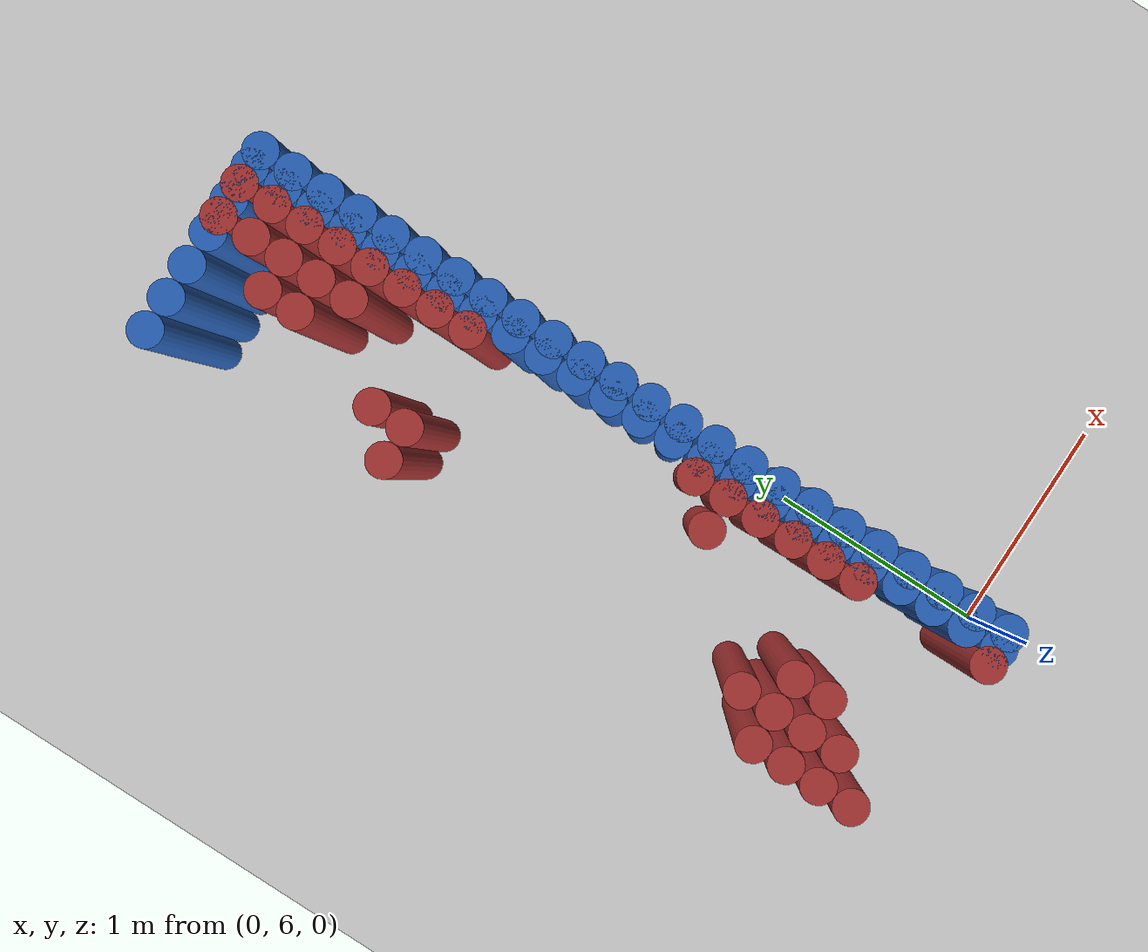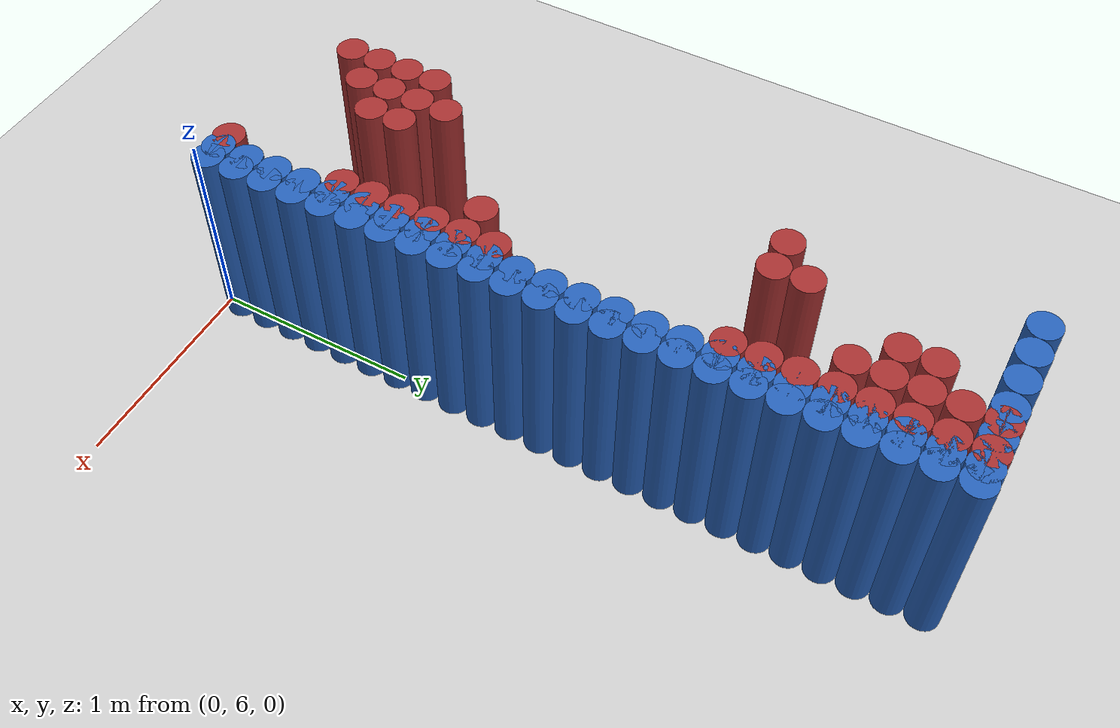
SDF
<sdf version="1.6">
 <world name="barn_world">
  <model name="ground_plane">
   <static>1</static>
   <link name="link">
    <collision name="collision">
     <geometry><plane><normal>0 0 1</normal><size>100 100</size></plane></geometry>
    </collision>
    <visual name="visual">
     <geometry><plane><normal>0 0 1</normal><size>100 100</size></plane></geometry>
     <material>
      <script><uri>file://media/materials/scripts/gazebo.material</uri><name>Gazebo/Grey</name></script>
     </material>
    </visual>
   </link>
  </model>
  <model name="unit_cylinder_278">
   <static>1</static>
   <pose>-0.9000 6.2250 0.5 0 0 0</pose>
   <link name="link">
    <collision name="collision">
     <geometry><cylinder><radius>0.075</radius><length>1</length></cylinder></geometry>
    </collision>
    <visual name="visual">
     <geometry><cylinder><radius>0.075</radius><length>1</length></cylinder></geometry>
     <material><ambient>0.648 0.192 0.192 1</ambient><diffuse>0.648 0.192 0.192 1</diffuse></material>
    </visual>
   </link>
  </model>
  <model name="unit_cylinder_279">
   <static>1</static>
   <pose>-0.9000 6.3750 0.5 0 0 0</pose>
   <link name="link">
    <collision name="collision">
     <geometry><cylinder><radius>0.075</radius><length>1</length></cylinder></geometry>
    </collision>
    <visual name="visual">
     <geometry><cylinder><radius>0.075</radius><length>1</length></cylinder></geometry>
     <material><ambient>0.648 0.192 0.192 1</ambient><diffuse>0.648 0.192 0.192 1</diffuse></material>
    </visual>
   </link>
  </model>
  <model name="unit_cylinder_280">
   <static>1</static>
   <pose>-0.9000 6.5250 0.5 0 0 0</pose>
   <link name="link">
    <collision name="collision">
     <geometry><cylinder><radius>0.075</radius><length>1</length></cylinder></geometry>
    </collision>
    <visual name="visual">
     <geometry><cylinder><radius>0.075</radius><length>1</length></cylinder></geometry>
     <material><ambient>0.648 0.192 0.192 1</ambient><diffuse>0.648 0.192 0.192 1</diffuse></material>
    </visual>
   </link>
  </model>
  <model name="unit_cylinder_281">
   <static>1</static>
   <pose>-0.9000 6.6750 0.5 0 0 0</pose>
   <link name="link">
    <collision name="collision">
     <geometry><cylinder><radius>0.075</radius><length>1</length></cylinder></geometry>
    </collision>
    <visual name="visual">
     <geometry><cylinder><radius>0.075</radius><length>1</length></cylinder></geometry>
     <material><ambient>0.648 0.192 0.192 1</ambient><diffuse>0.648 0.192 0.192 1</diffuse></material>
    </visual>
   </link>
  </model>
  <model name="unit_cylinder_284">
   <static>1</static>
   <pose>-0.7500 6.3750 0.5 0 0 0</pose>
   <link name="link">
    <collision name="collision">
     <geometry><cylinder><radius>0.075</radius><length>1</length></cylinder></geometry>
    </collision>
    <visual name="visual">
     <geometry><cylinder><radius>0.075</radius><length>1</length></cylinder></geometry>
     <material><ambient>0.648 0.192 0.192 1</ambient><diffuse>0.648 0.192 0.192 1</diffuse></material>
    </visual>
   </link>
  </model>
  <model name="unit_cylinder_285">
   <static>1</static>
   <pose>-0.7500 6.5250 0.5 0 0 0</pose>
   <link name="link">
    <collision name="collision">
     <geometry><cylinder><radius>0.075</radius><length>1</length></cylinder></geometry>
    </collision>
    <visual name="visual">
     <geometry><cylinder><radius>0.075</radius><length>1</length></cylinder></geometry>
     <material><ambient>0.648 0.192 0.192 1</ambient><diffuse>0.648 0.192 0.192 1</diffuse></material>
    </visual>
   </link>
  </model>
  <model name="unit_cylinder_286">
   <static>1</static>
   <pose>-0.7500 6.6750 0.5 0 0 0</pose>
   <link name="link">
    <collision name="collision">
     <geometry><cylinder><radius>0.075</radius><length>1</length></cylinder></geometry>
    </collision>
    <visual name="visual">
     <geometry><cylinder><radius>0.075</radius><length>1</length></cylinder></geometry>
     <material><ambient>0.648 0.192 0.192 1</ambient><diffuse>0.648 0.192 0.192 1</diffuse></material>
    </visual>
   </link>
  </model>
  <model name="unit_cylinder_287">
   <static>1</static>
   <pose>-0.7500 6.8250 0.5 0 0 0</pose>
   <link name="link">
    <collision name="collision">
     <geometry><cylinder><radius>0.075</radius><length>1</length></cylinder></geometry>
    </collision>
    <visual name="visual">
     <geometry><cylinder><radius>0.075</radius><length>1</length></cylinder></geometry>
     <material><ambient>0.648 0.192 0.192 1</ambient><diffuse>0.648 0.192 0.192 1</diffuse></material>
    </visual>
   </link>
  </model>
  <model name="unit_cylinder_288">
   <static>1</static>
   <pose>-0.7500 8.4750 0.5 0 0 0</pose>
   <link name="link">
    <collision name="collision">
     <geometry><cylinder><radius>0.075</radius><length>1</length></cylinder></geometry>
    </collision>
    <visual name="visual">
     <geometry><cylinder><radius>0.075</radius><length>1</length></cylinder></geometry>
     <material><ambient>0.648 0.192 0.192 1</ambient><diffuse>0.648 0.192 0.192 1</diffuse></material>
    </visual>
   </link>
  </model>
  <model name="unit_cylinder_290">
   <static>1</static>
   <pose>-0.6000 6.5250 0.5 0 0 0</pose>
   <link name="link">
    <collision name="collision">
     <geometry><cylinder><radius>0.075</radius><length>1</length></cylinder></geometry>
    </collision>
    <visual name="visual">
     <geometry><cylinder><radius>0.075</radius><length>1</length></cylinder></geometry>
     <material><ambient>0.648 0.192 0.192 1</ambient><diffuse>0.648 0.192 0.192 1</diffuse></material>
    </visual>
   </link>
  </model>
  <model name="unit_cylinder_291">
   <static>1</static>
   <pose>-0.6000 6.6750 0.5 0 0 0</pose>
   <link name="link">
    <collision name="collision">
     <geometry><cylinder><radius>0.075</radius><length>1</length></cylinder></geometry>
    </collision>
    <visual name="visual">
     <geometry><cylinder><radius>0.075</radius><length>1</length></cylinder></geometry>
     <material><ambient>0.648 0.192 0.192 1</ambient><diffuse>0.648 0.192 0.192 1</diffuse></material>
    </visual>
   </link>
  </model>
  <model name="unit_cylinder_292">
   <static>1</static>
   <pose>-0.6000 8.4750 0.5 0 0 0</pose>
   <link name="link">
    <collision name="collision">
     <geometry><cylinder><radius>0.075</radius><length>1</length></cylinder></geometry>
    </collision>
    <visual name="visual">
     <geometry><cylinder><radius>0.075</radius><length>1</length></cylinder></geometry>
     <material><ambient>0.648 0.192 0.192 1</ambient><diffuse>0.648 0.192 0.192 1</diffuse></material>
    </visual>
   </link>
  </model>
  <model name="unit_cylinder_293">
   <static>1</static>
   <pose>-0.6000 8.6250 0.5 0 0 0</pose>
   <link name="link">
    <collision name="collision">
     <geometry><cylinder><radius>0.075</radius><length>1</length></cylinder></geometry>
    </collision>
    <visual name="visual">
     <geometry><cylinder><radius>0.075</radius><length>1</length></cylinder></geometry>
     <material><ambient>0.648 0.192 0.192 1</ambient><diffuse>0.648 0.192 0.192 1</diffuse></material>
    </visual>
   </link>
  </model>
  <model name="unit_cylinder_295">
   <static>1</static>
   <pose>-0.4500 9.0750 0.5 0 0 0</pose>
   <link name="link">
    <collision name="collision">
     <geometry><cylinder><radius>0.075</radius><length>1</length></cylinder></geometry>
    </collision>
    <visual name="visual">
     <geometry><cylinder><radius>0.075</radius><length>1</length></cylinder></geometry>
     <material><ambient>0.648 0.192 0.192 1</ambient><diffuse>0.648 0.192 0.192 1</diffuse></material>
    </visual>
   </link>
  </model>
  <model name="unit_cylinder_296">
   <static>1</static>
   <pose>-0.4500 9.2250 0.5 0 0 0</pose>
   <link name="link">
    <collision name="collision">
     <geometry><cylinder><radius>0.075</radius><length>1</length></cylinder></geometry>
    </collision>
    <visual name="visual">
     <geometry><cylinder><radius>0.075</radius><length>1</length></cylinder></geometry>
     <material><ambient>0.648 0.192 0.192 1</ambient><diffuse>0.648 0.192 0.192 1</diffuse></material>
    </visual>
   </link>
  </model>
  <model name="unit_cylinder_301">
   <static>1</static>
   <pose>-0.3000 7.2750 0.5 0 0 0</pose>
   <link name="link">
    <collision name="collision">
     <geometry><cylinder><radius>0.075</radius><length>1</length></cylinder></geometry>
    </collision>
    <visual name="visual">
     <geometry><cylinder><radius>0.075</radius><length>1</length></cylinder></geometry>
     <material><ambient>0.648 0.192 0.192 1</ambient><diffuse>0.648 0.192 0.192 1</diffuse></material>
    </visual>
   </link>
  </model>
  <model name="unit_cylinder_302">
   <static>1</static>
   <pose>-0.3000 8.9250 0.5 0 0 0</pose>
   <link name="link">
    <collision name="collision">
     <geometry><cylinder><radius>0.075</radius><length>1</length></cylinder></geometry>
    </collision>
    <visual name="visual">
     <geometry><cylinder><radius>0.075</radius><length>1</length></cylinder></geometry>
     <material><ambient>0.648 0.192 0.192 1</ambient><diffuse>0.648 0.192 0.192 1</diffuse></material>
    </visual>
   </link>
  </model>
  <model name="unit_cylinder_303">
   <static>1</static>
   <pose>-0.3000 9.0750 0.5 0 0 0</pose>
   <link name="link">
    <collision name="collision">
     <geometry><cylinder><radius>0.075</radius><length>1</length></cylinder></geometry>
    </collision>
    <visual name="visual">
     <geometry><cylinder><radius>0.075</radius><length>1</length></cylinder></geometry>
     <material><ambient>0.648 0.192 0.192 1</ambient><diffuse>0.648 0.192 0.192 1</diffuse></material>
    </visual>
   </link>
  </model>
  <model name="unit_cylinder_304">
   <static>1</static>
   <pose>-0.3000 9.2250 0.5 0 0 0</pose>
   <link name="link">
    <collision name="collision">
     <geometry><cylinder><radius>0.075</radius><length>1</length></cylinder></geometry>
    </collision>
    <visual name="visual">
     <geometry><cylinder><radius>0.075</radius><length>1</length></cylinder></geometry>
     <material><ambient>0.648 0.192 0.192 1</ambient><diffuse>0.648 0.192 0.192 1</diffuse></material>
    </visual>
   </link>
  </model>
  <model name="unit_cylinder_305">
   <static>1</static>
   <pose>-0.3000 9.3750 0.5 0 0 0</pose>
   <link name="link">
    <collision name="collision">
     <geometry><cylinder><radius>0.075</radius><length>1</length></cylinder></geometry>
    </collision>
    <visual name="visual">
     <geometry><cylinder><radius>0.075</radius><length>1</length></cylinder></geometry>
     <material><ambient>0.648 0.192 0.192 1</ambient><diffuse>0.648 0.192 0.192 1</diffuse></material>
    </visual>
   </link>
  </model>
  <model name="unit_cylinder_306">
   <static>1</static>
   <pose>-0.3000 9.5250 0.5 0 0 0</pose>
   <link name="link">
    <collision name="collision">
     <geometry><cylinder><radius>0.075</radius><length>1</length></cylinder></geometry>
    </collision>
    <visual name="visual">
     <geometry><cylinder><radius>0.075</radius><length>1</length></cylinder></geometry>
     <material><ambient>0.648 0.192 0.192 1</ambient><diffuse>0.648 0.192 0.192 1</diffuse></material>
    </visual>
   </link>
  </model>
  <model name="unit_cylinder_313">
   <static>1</static>
   <pose>-0.1500 6.0750 0.5 0 0 0</pose>
   <link name="link">
    <collision name="collision">
     <geometry><cylinder><radius>0.075</radius><length>1</length></cylinder></geometry>
    </collision>
    <visual name="visual">
     <geometry><cylinder><radius>0.075</radius><length>1</length></cylinder></geometry>
     <material><ambient>0.648 0.192 0.192 1</ambient><diffuse>0.648 0.192 0.192 1</diffuse></material>
    </visual>
   </link>
  </model>
  <model name="unit_cylinder_314">
   <static>1</static>
   <pose>-0.1500 6.6750 0.5 0 0 0</pose>
   <link name="link">
    <collision name="collision">
     <geometry><cylinder><radius>0.075</radius><length>1</length></cylinder></geometry>
    </collision>
    <visual name="visual">
     <geometry><cylinder><radius>0.075</radius><length>1</length></cylinder></geometry>
     <material><ambient>0.648 0.192 0.192 1</ambient><diffuse>0.648 0.192 0.192 1</diffuse></material>
    </visual>
   </link>
  </model>
  <model name="unit_cylinder_315">
   <static>1</static>
   <pose>-0.1500 6.8250 0.5 0 0 0</pose>
   <link name="link">
    <collision name="collision">
     <geometry><cylinder><radius>0.075</radius><length>1</length></cylinder></geometry>
    </collision>
    <visual name="visual">
     <geometry><cylinder><radius>0.075</radius><length>1</length></cylinder></geometry>
     <material><ambient>0.648 0.192 0.192 1</ambient><diffuse>0.648 0.192 0.192 1</diffuse></material>
    </visual>
   </link>
  </model>
  <model name="unit_cylinder_316">
   <static>1</static>
   <pose>-0.1500 6.9750 0.5 0 0 0</pose>
   <link name="link">
    <collision name="collision">
     <geometry><cylinder><radius>0.075</radius><length>1</length></cylinder></geometry>
    </collision>
    <visual name="visual">
     <geometry><cylinder><radius>0.075</radius><length>1</length></cylinder></geometry>
     <material><ambient>0.648 0.192 0.192 1</ambient><diffuse>0.648 0.192 0.192 1</diffuse></material>
    </visual>
   </link>
  </model>
  <model name="unit_cylinder_317">
   <static>1</static>
   <pose>-0.1500 7.1250 0.5 0 0 0</pose>
   <link name="link">
    <collision name="collision">
     <geometry><cylinder><radius>0.075</radius><length>1</length></cylinder></geometry>
    </collision>
    <visual name="visual">
     <geometry><cylinder><radius>0.075</radius><length>1</length></cylinder></geometry>
     <material><ambient>0.648 0.192 0.192 1</ambient><diffuse>0.648 0.192 0.192 1</diffuse></material>
    </visual>
   </link>
  </model>
  <model name="unit_cylinder_318">
   <static>1</static>
   <pose>-0.1500 7.2750 0.5 0 0 0</pose>
   <link name="link">
    <collision name="collision">
     <geometry><cylinder><radius>0.075</radius><length>1</length></cylinder></geometry>
    </collision>
    <visual name="visual">
     <geometry><cylinder><radius>0.075</radius><length>1</length></cylinder></geometry>
     <material><ambient>0.648 0.192 0.192 1</ambient><diffuse>0.648 0.192 0.192 1</diffuse></material>
    </visual>
   </link>
  </model>
  <model name="unit_cylinder_319">
   <static>1</static>
   <pose>-0.1500 7.4250 0.5 0 0 0</pose>
   <link name="link">
    <collision name="collision">
     <geometry><cylinder><radius>0.075</radius><length>1</length></cylinder></geometry>
    </collision>
    <visual name="visual">
     <geometry><cylinder><radius>0.075</radius><length>1</length></cylinder></geometry>
     <material><ambient>0.648 0.192 0.192 1</ambient><diffuse>0.648 0.192 0.192 1</diffuse></material>
    </visual>
   </link>
  </model>
  <model name="unit_cylinder_320">
   <static>1</static>
   <pose>-0.1500 8.4750 0.5 0 0 0</pose>
   <link name="link">
    <collision name="collision">
     <geometry><cylinder><radius>0.075</radius><length>1</length></cylinder></geometry>
    </collision>
    <visual name="visual">
     <geometry><cylinder><radius>0.075</radius><length>1</length></cylinder></geometry>
     <material><ambient>0.648 0.192 0.192 1</ambient><diffuse>0.648 0.192 0.192 1</diffuse></material>
    </visual>
   </link>
  </model>
  <model name="unit_cylinder_321">
   <static>1</static>
   <pose>-0.1500 8.6250 0.5 0 0 0</pose>
   <link name="link">
    <collision name="collision">
     <geometry><cylinder><radius>0.075</radius><length>1</length></cylinder></geometry>
    </collision>
    <visual name="visual">
     <geometry><cylinder><radius>0.075</radius><length>1</length></cylinder></geometry>
     <material><ambient>0.648 0.192 0.192 1</ambient><diffuse>0.648 0.192 0.192 1</diffuse></material>
    </visual>
   </link>
  </model>
  <model name="unit_cylinder_322">
   <static>1</static>
   <pose>-0.1500 8.7750 0.5 0 0 0</pose>
   <link name="link">
    <collision name="collision">
     <geometry><cylinder><radius>0.075</radius><length>1</length></cylinder></geometry>
    </collision>
    <visual name="visual">
     <geometry><cylinder><radius>0.075</radius><length>1</length></cylinder></geometry>
     <material><ambient>0.648 0.192 0.192 1</ambient><diffuse>0.648 0.192 0.192 1</diffuse></material>
    </visual>
   </link>
  </model>
  <model name="unit_cylinder_323">
   <static>1</static>
   <pose>-0.1500 8.9250 0.5 0 0 0</pose>
   <link name="link">
    <collision name="collision">
     <geometry><cylinder><radius>0.075</radius><length>1</length></cylinder></geometry>
    </collision>
    <visual name="visual">
     <geometry><cylinder><radius>0.075</radius><length>1</length></cylinder></geometry>
     <material><ambient>0.648 0.192 0.192 1</ambient><diffuse>0.648 0.192 0.192 1</diffuse></material>
    </visual>
   </link>
  </model>
  <model name="unit_cylinder_324">
   <static>1</static>
   <pose>-0.1500 9.0750 0.5 0 0 0</pose>
   <link name="link">
    <collision name="collision">
     <geometry><cylinder><radius>0.075</radius><length>1</length></cylinder></geometry>
    </collision>
    <visual name="visual">
     <geometry><cylinder><radius>0.075</radius><length>1</length></cylinder></geometry>
     <material><ambient>0.648 0.192 0.192 1</ambient><diffuse>0.648 0.192 0.192 1</diffuse></material>
    </visual>
   </link>
  </model>
  <model name="unit_cylinder_325">
   <static>1</static>
   <pose>-0.1500 9.2250 0.5 0 0 0</pose>
   <link name="link">
    <collision name="collision">
     <geometry><cylinder><radius>0.075</radius><length>1</length></cylinder></geometry>
    </collision>
    <visual name="visual">
     <geometry><cylinder><radius>0.075</radius><length>1</length></cylinder></geometry>
     <material><ambient>0.648 0.192 0.192 1</ambient><diffuse>0.648 0.192 0.192 1</diffuse></material>
    </visual>
   </link>
  </model>
  <model name="unit_cylinder_326">
   <static>1</static>
   <pose>-0.1500 9.3750 0.5 0 0 0</pose>
   <link name="link">
    <collision name="collision">
     <geometry><cylinder><radius>0.075</radius><length>1</length></cylinder></geometry>
    </collision>
    <visual name="visual">
     <geometry><cylinder><radius>0.075</radius><length>1</length></cylinder></geometry>
     <material><ambient>0.648 0.192 0.192 1</ambient><diffuse>0.648 0.192 0.192 1</diffuse></material>
    </visual>
   </link>
  </model>
  <model name="unit_cylinder_327">
   <static>1</static>
   <pose>-0.1500 9.5250 0.5 0 0 0</pose>
   <link name="link">
    <collision name="collision">
     <geometry><cylinder><radius>0.075</radius><length>1</length></cylinder></geometry>
    </collision>
    <visual name="visual">
     <geometry><cylinder><radius>0.075</radius><length>1</length></cylinder></geometry>
     <material><ambient>0.648 0.192 0.192 1</ambient><diffuse>0.648 0.192 0.192 1</diffuse></material>
    </visual>
   </link>
  </model>
  <model name="unit_cylinder_334">
   <static>1</static>
   <pose>0.0000 6.0750 0.5 0 0 0</pose>
   <link name="link">
    <collision name="collision">
     <geometry><cylinder><radius>0.075</radius><length>1</length></cylinder></geometry>
    </collision>
    <visual name="visual">
     <geometry><cylinder><radius>0.075</radius><length>1</length></cylinder></geometry>
     <material><ambient>0.152 0.379 0.72 1</ambient><diffuse>0.152 0.379 0.72 1</diffuse></material>
    </visual>
   </link>
  </model>
  <model name="unit_cylinder_335">
   <static>1</static>
   <pose>0.0000 6.2250 0.5 0 0 0</pose>
   <link name="link">
    <collision name="collision">
     <geometry><cylinder><radius>0.075</radius><length>1</length></cylinder></geometry>
    </collision>
    <visual name="visual">
     <geometry><cylinder><radius>0.075</radius><length>1</length></cylinder></geometry>
     <material><ambient>0.152 0.379 0.72 1</ambient><diffuse>0.152 0.379 0.72 1</diffuse></material>
    </visual>
   </link>
  </model>
  <model name="unit_cylinder_336">
   <static>1</static>
   <pose>0.0000 6.3750 0.5 0 0 0</pose>
   <link name="link">
    <collision name="collision">
     <geometry><cylinder><radius>0.075</radius><length>1</length></cylinder></geometry>
    </collision>
    <visual name="visual">
     <geometry><cylinder><radius>0.075</radius><length>1</length></cylinder></geometry>
     <material><ambient>0.152 0.379 0.72 1</ambient><diffuse>0.152 0.379 0.72 1</diffuse></material>
    </visual>
   </link>
  </model>
  <model name="unit_cylinder_337">
   <static>1</static>
   <pose>0.0000 6.5250 0.5 0 0 0</pose>
   <link name="link">
    <collision name="collision">
     <geometry><cylinder><radius>0.075</radius><length>1</length></cylinder></geometry>
    </collision>
    <visual name="visual">
     <geometry><cylinder><radius>0.075</radius><length>1</length></cylinder></geometry>
     <material><ambient>0.152 0.379 0.72 1</ambient><diffuse>0.152 0.379 0.72 1</diffuse></material>
    </visual>
   </link>
  </model>
  <model name="unit_cylinder_338">
   <static>1</static>
   <pose>0.0000 6.6750 0.5 0 0 0</pose>
   <link name="link">
    <collision name="collision">
     <geometry><cylinder><radius>0.075</radius><length>1</length></cylinder></geometry>
    </collision>
    <visual name="visual">
     <geometry><cylinder><radius>0.075</radius><length>1</length></cylinder></geometry>
     <material><ambient>0.152 0.379 0.72 1</ambient><diffuse>0.152 0.379 0.72 1</diffuse></material>
    </visual>
   </link>
  </model>
  <model name="unit_cylinder_339">
   <static>1</static>
   <pose>0.0000 6.8250 0.5 0 0 0</pose>
   <link name="link">
    <collision name="collision">
     <geometry><cylinder><radius>0.075</radius><length>1</length></cylinder></geometry>
    </collision>
    <visual name="visual">
     <geometry><cylinder><radius>0.075</radius><length>1</length></cylinder></geometry>
     <material><ambient>0.152 0.379 0.72 1</ambient><diffuse>0.152 0.379 0.72 1</diffuse></material>
    </visual>
   </link>
  </model>
  <model name="unit_cylinder_340">
   <static>1</static>
   <pose>0.0000 6.9750 0.5 0 0 0</pose>
   <link name="link">
    <collision name="collision">
     <geometry><cylinder><radius>0.075</radius><length>1</length></cylinder></geometry>
    </collision>
    <visual name="visual">
     <geometry><cylinder><radius>0.075</radius><length>1</length></cylinder></geometry>
     <material><ambient>0.152 0.379 0.72 1</ambient><diffuse>0.152 0.379 0.72 1</diffuse></material>
    </visual>
   </link>
  </model>
  <model name="unit_cylinder_341">
   <static>1</static>
   <pose>0.0000 7.1250 0.5 0 0 0</pose>
   <link name="link">
    <collision name="collision">
     <geometry><cylinder><radius>0.075</radius><length>1</length></cylinder></geometry>
    </collision>
    <visual name="visual">
     <geometry><cylinder><radius>0.075</radius><length>1</length></cylinder></geometry>
     <material><ambient>0.152 0.379 0.72 1</ambient><diffuse>0.152 0.379 0.72 1</diffuse></material>
    </visual>
   </link>
  </model>
  <model name="unit_cylinder_342">
   <static>1</static>
   <pose>0.0000 7.2750 0.5 0 0 0</pose>
   <link name="link">
    <collision name="collision">
     <geometry><cylinder><radius>0.075</radius><length>1</length></cylinder></geometry>
    </collision>
    <visual name="visual">
     <geometry><cylinder><radius>0.075</radius><length>1</length></cylinder></geometry>
     <material><ambient>0.152 0.379 0.72 1</ambient><diffuse>0.152 0.379 0.72 1</diffuse></material>
    </visual>
   </link>
  </model>
  <model name="unit_cylinder_343">
   <static>1</static>
   <pose>0.0000 7.4250 0.5 0 0 0</pose>
   <link name="link">
    <collision name="collision">
     <geometry><cylinder><radius>0.075</radius><length>1</length></cylinder></geometry>
    </collision>
    <visual name="visual">
     <geometry><cylinder><radius>0.075</radius><length>1</length></cylinder></geometry>
     <material><ambient>0.152 0.379 0.72 1</ambient><diffuse>0.152 0.379 0.72 1</diffuse></material>
    </visual>
   </link>
  </model>
  <model name="unit_cylinder_344">
   <static>1</static>
   <pose>0.0000 7.5750 0.5 0 0 0</pose>
   <link name="link">
    <collision name="collision">
     <geometry><cylinder><radius>0.075</radius><length>1</length></cylinder></geometry>
    </collision>
    <visual name="visual">
     <geometry><cylinder><radius>0.075</radius><length>1</length></cylinder></geometry>
     <material><ambient>0.152 0.379 0.72 1</ambient><diffuse>0.152 0.379 0.72 1</diffuse></material>
    </visual>
   </link>
  </model>
  <model name="unit_cylinder_345">
   <static>1</static>
   <pose>0.0000 7.7250 0.5 0 0 0</pose>
   <link name="link">
    <collision name="collision">
     <geometry><cylinder><radius>0.075</radius><length>1</length></cylinder></geometry>
    </collision>
    <visual name="visual">
     <geometry><cylinder><radius>0.075</radius><length>1</length></cylinder></geometry>
     <material><ambient>0.152 0.379 0.72 1</ambient><diffuse>0.152 0.379 0.72 1</diffuse></material>
    </visual>
   </link>
  </model>
  <model name="unit_cylinder_346">
   <static>1</static>
   <pose>0.0000 7.8750 0.5 0 0 0</pose>
   <link name="link">
    <collision name="collision">
     <geometry><cylinder><radius>0.075</radius><length>1</length></cylinder></geometry>
    </collision>
    <visual name="visual">
     <geometry><cylinder><radius>0.075</radius><length>1</length></cylinder></geometry>
     <material><ambient>0.152 0.379 0.72 1</ambient><diffuse>0.152 0.379 0.72 1</diffuse></material>
    </visual>
   </link>
  </model>
  <model name="unit_cylinder_347">
   <static>1</static>
   <pose>0.0000 8.0250 0.5 0 0 0</pose>
   <link name="link">
    <collision name="collision">
     <geometry><cylinder><radius>0.075</radius><length>1</length></cylinder></geometry>
    </collision>
    <visual name="visual">
     <geometry><cylinder><radius>0.075</radius><length>1</length></cylinder></geometry>
     <material><ambient>0.152 0.379 0.72 1</ambient><diffuse>0.152 0.379 0.72 1</diffuse></material>
    </visual>
   </link>
  </model>
  <model name="unit_cylinder_348">
   <static>1</static>
   <pose>0.0000 8.1750 0.5 0 0 0</pose>
   <link name="link">
    <collision name="collision">
     <geometry><cylinder><radius>0.075</radius><length>1</length></cylinder></geometry>
    </collision>
    <visual name="visual">
     <geometry><cylinder><radius>0.075</radius><length>1</length></cylinder></geometry>
     <material><ambient>0.152 0.379 0.72 1</ambient><diffuse>0.152 0.379 0.72 1</diffuse></material>
    </visual>
   </link>
  </model>
  <model name="unit_cylinder_349">
   <static>1</static>
   <pose>0.0000 8.3250 0.5 0 0 0</pose>
   <link name="link">
    <collision name="collision">
     <geometry><cylinder><radius>0.075</radius><length>1</length></cylinder></geometry>
    </collision>
    <visual name="visual">
     <geometry><cylinder><radius>0.075</radius><length>1</length></cylinder></geometry>
     <material><ambient>0.152 0.379 0.72 1</ambient><diffuse>0.152 0.379 0.72 1</diffuse></material>
    </visual>
   </link>
  </model>
  <model name="unit_cylinder_350">
   <static>1</static>
   <pose>0.0000 8.4750 0.5 0 0 0</pose>
   <link name="link">
    <collision name="collision">
     <geometry><cylinder><radius>0.075</radius><length>1</length></cylinder></geometry>
    </collision>
    <visual name="visual">
     <geometry><cylinder><radius>0.075</radius><length>1</length></cylinder></geometry>
     <material><ambient>0.152 0.379 0.72 1</ambient><diffuse>0.152 0.379 0.72 1</diffuse></material>
    </visual>
   </link>
  </model>
  <model name="unit_cylinder_351">
   <static>1</static>
   <pose>0.0000 8.6250 0.5 0 0 0</pose>
   <link name="link">
    <collision name="collision">
     <geometry><cylinder><radius>0.075</radius><length>1</length></cylinder></geometry>
    </collision>
    <visual name="visual">
     <geometry><cylinder><radius>0.075</radius><length>1</length></cylinder></geometry>
     <material><ambient>0.152 0.379 0.72 1</ambient><diffuse>0.152 0.379 0.72 1</diffuse></material>
    </visual>
   </link>
  </model>
  <model name="unit_cylinder_352">
   <static>1</static>
   <pose>0.0000 8.7750 0.5 0 0 0</pose>
   <link name="link">
    <collision name="collision">
     <geometry><cylinder><radius>0.075</radius><length>1</length></cylinder></geometry>
    </collision>
    <visual name="visual">
     <geometry><cylinder><radius>0.075</radius><length>1</length></cylinder></geometry>
     <material><ambient>0.152 0.379 0.72 1</ambient><diffuse>0.152 0.379 0.72 1</diffuse></material>
    </visual>
   </link>
  </model>
  <model name="unit_cylinder_353">
   <static>1</static>
   <pose>0.0000 8.9250 0.5 0 0 0</pose>
   <link name="link">
    <collision name="collision">
     <geometry><cylinder><radius>0.075</radius><length>1</length></cylinder></geometry>
    </collision>
    <visual name="visual">
     <geometry><cylinder><radius>0.075</radius><length>1</length></cylinder></geometry>
     <material><ambient>0.152 0.379 0.72 1</ambient><diffuse>0.152 0.379 0.72 1</diffuse></material>
    </visual>
   </link>
  </model>
  <model name="unit_cylinder_354">
   <static>1</static>
   <pose>0.0000 9.0750 0.5 0 0 0</pose>
   <link name="link">
    <collision name="collision">
     <geometry><cylinder><radius>0.075</radius><length>1</length></cylinder></geometry>
    </collision>
    <visual name="visual">
     <geometry><cylinder><radius>0.075</radius><length>1</length></cylinder></geometry>
     <material><ambient>0.152 0.379 0.72 1</ambient><diffuse>0.152 0.379 0.72 1</diffuse></material>
    </visual>
   </link>
  </model>
  <model name="unit_cylinder_355">
   <static>1</static>
   <pose>0.0000 9.2250 0.5 0 0 0</pose>
   <link name="link">
    <collision name="collision">
     <geometry><cylinder><radius>0.075</radius><length>1</length></cylinder></geometry>
    </collision>
    <visual name="visual">
     <geometry><cylinder><radius>0.075</radius><length>1</length></cylinder></geometry>
     <material><ambient>0.152 0.379 0.72 1</ambient><diffuse>0.152 0.379 0.72 1</diffuse></material>
    </visual>
   </link>
  </model>
  <model name="unit_cylinder_356">
   <static>1</static>
   <pose>0.0000 9.3750 0.5 0 0 0</pose>
   <link name="link">
    <collision name="collision">
     <geometry><cylinder><radius>0.075</radius><length>1</length></cylinder></geometry>
    </collision>
    <visual name="visual">
     <geometry><cylinder><radius>0.075</radius><length>1</length></cylinder></geometry>
     <material><ambient>0.152 0.379 0.72 1</ambient><diffuse>0.152 0.379 0.72 1</diffuse></material>
    </visual>
   </link>
  </model>
  <model name="unit_cylinder_357">
   <static>1</static>
   <pose>0.0000 9.5250 0.5 0 0 0</pose>
   <link name="link">
    <collision name="collision">
     <geometry><cylinder><radius>0.075</radius><length>1</length></cylinder></geometry>
    </collision>
    <visual name="visual">
     <geometry><cylinder><radius>0.075</radius><length>1</length></cylinder></geometry>
     <material><ambient>0.152 0.379 0.72 1</ambient><diffuse>0.152 0.379 0.72 1</diffuse></material>
    </visual>
   </link>
  </model>
  <model name="unit_cylinder_358">
   <static>1</static>
   <pose>-0.0750 9.5250 0.5 0 0 0</pose>
   <link name="link">
    <collision name="collision">
     <geometry><cylinder><radius>0.075</radius><length>1</length></cylinder></geometry>
    </collision>
    <visual name="visual">
     <geometry><cylinder><radius>0.075</radius><length>1</length></cylinder></geometry>
     <material><ambient>0.152 0.379 0.72 1</ambient><diffuse>0.152 0.379 0.72 1</diffuse></material>
    </visual>
   </link>
  </model>
  <model name="unit_cylinder_359">
   <static>1</static>
   <pose>-0.2250 9.5250 0.5 0 0 0</pose>
   <link name="link">
    <collision name="collision">
     <geometry><cylinder><radius>0.075</radius><length>1</length></cylinder></geometry>
    </collision>
    <visual name="visual">
     <geometry><cylinder><radius>0.075</radius><length>1</length></cylinder></geometry>
     <material><ambient>0.152 0.379 0.72 1</ambient><diffuse>0.152 0.379 0.72 1</diffuse></material>
    </visual>
   </link>
  </model>
  <model name="unit_cylinder_360">
   <static>1</static>
   <pose>-0.3750 9.5250 0.5 0 0 0</pose>
   <link name="link">
    <collision name="collision">
     <geometry><cylinder><radius>0.075</radius><length>1</length></cylinder></geometry>
    </collision>
    <visual name="visual">
     <geometry><cylinder><radius>0.075</radius><length>1</length></cylinder></geometry>
     <material><ambient>0.152 0.379 0.72 1</ambient><diffuse>0.152 0.379 0.72 1</diffuse></material>
    </visual>
   </link>
  </model>
  <model name="unit_cylinder_361">
   <static>1</static>
   <pose>-0.5250 9.5250 0.5 0 0 0</pose>
   <link name="link">
    <collision name="collision">
     <geometry><cylinder><radius>0.075</radius><length>1</length></cylinder></geometry>
    </collision>
    <visual name="visual">
     <geometry><cylinder><radius>0.075</radius><length>1</length></cylinder></geometry>
     <material><ambient>0.152 0.379 0.72 1</ambient><diffuse>0.152 0.379 0.72 1</diffuse></material>
    </visual>
   </link>
  </model>
  <model name="unit_cylinder_362">
   <static>1</static>
   <pose>-0.6750 9.5250 0.5 0 0 0</pose>
   <link name="link">
    <collision name="collision">
     <geometry><cylinder><radius>0.075</radius><length>1</length></cylinder></geometry>
    </collision>
    <visual name="visual">
     <geometry><cylinder><radius>0.075</radius><length>1</length></cylinder></geometry>
     <material><ambient>0.152 0.379 0.72 1</ambient><diffuse>0.152 0.379 0.72 1</diffuse></material>
    </visual>
   </link>
  </model>
  <model name="unit_cylinder_363">
   <static>1</static>
   <pose>-0.8250 9.5250 0.5 0 0 0</pose>
   <link name="link">
    <collision name="collision">
     <geometry><cylinder><radius>0.075</radius><length>1</length></cylinder></geometry>
    </collision>
    <visual name="visual">
     <geometry><cylinder><radius>0.075</radius><length>1</length></cylinder></geometry>
     <material><ambient>0.152 0.379 0.72 1</ambient><diffuse>0.152 0.379 0.72 1</diffuse></material>
    </visual>
   </link>
  </model>
  <model name="unit_cylinder_400">
   <static>1</static>
   <pose>-0.0750 6.0750 0.5 0 0 0</pose>
   <link name="link">
    <collision name="collision">
     <geometry><cylinder><radius>0.075</radius><length>1</length></cylinder></geometry>
    </collision>
    <visual name="visual">
     <geometry><cylinder><radius>0.075</radius><length>1</length></cylinder></geometry>
     <material><ambient>0.152 0.379 0.72 1</ambient><diffuse>0.152 0.379 0.72 1</diffuse></material>
    </visual>
   </link>
  </model>
  <model name="unit_cylinder_402">
   <static>1</static>
   <pose>-0.0750 6.2250 0.5 0 0 0</pose>
   <link name="link">
    <collision name="collision">
     <geometry><cylinder><radius>0.075</radius><length>1</length></cylinder></geometry>
    </collision>
    <visual name="visual">
     <geometry><cylinder><radius>0.075</radius><length>1</length></cylinder></geometry>
     <material><ambient>0.152 0.379 0.72 1</ambient><diffuse>0.152 0.379 0.72 1</diffuse></material>
    </visual>
   </link>
  </model>
  <model name="unit_cylinder_404">
   <static>1</static>
   <pose>-0.0750 6.3750 0.5 0 0 0</pose>
   <link name="link">
    <collision name="collision">
     <geometry><cylinder><radius>0.075</radius><length>1</length></cylinder></geometry>
    </collision>
    <visual name="visual">
     <geometry><cylinder><radius>0.075</radius><length>1</length></cylinder></geometry>
     <material><ambient>0.152 0.379 0.72 1</ambient><diffuse>0.152 0.379 0.72 1</diffuse></material>
    </visual>
   </link>
  </model>
  <model name="unit_cylinder_406">
   <static>1</static>
   <pose>-0.0750 6.5250 0.5 0 0 0</pose>
   <link name="link">
    <collision name="collision">
     <geometry><cylinder><radius>0.075</radius><length>1</length></cylinder></geometry>
    </collision>
    <visual name="visual">
     <geometry><cylinder><radius>0.075</radius><length>1</length></cylinder></geometry>
     <material><ambient>0.152 0.379 0.72 1</ambient><diffuse>0.152 0.379 0.72 1</diffuse></material>
    </visual>
   </link>
  </model>
  <model name="unit_cylinder_408">
   <static>1</static>
   <pose>-0.0750 6.6750 0.5 0 0 0</pose>
   <link name="link">
    <collision name="collision">
     <geometry><cylinder><radius>0.075</radius><length>1</length></cylinder></geometry>
    </collision>
    <visual name="visual">
     <geometry><cylinder><radius>0.075</radius><length>1</length></cylinder></geometry>
     <material><ambient>0.152 0.379 0.72 1</ambient><diffuse>0.152 0.379 0.72 1</diffuse></material>
    </visual>
   </link>
  </model>
  <model name="unit_cylinder_410">
   <static>1</static>
   <pose>-0.0750 6.8250 0.5 0 0 0</pose>
   <link name="link">
    <collision name="collision">
     <geometry><cylinder><radius>0.075</radius><length>1</length></cylinder></geometry>
    </collision>
    <visual name="visual">
     <geometry><cylinder><radius>0.075</radius><length>1</length></cylinder></geometry>
     <material><ambient>0.152 0.379 0.72 1</ambient><diffuse>0.152 0.379 0.72 1</diffuse></material>
    </visual>
   </link>
  </model>
  <model name="unit_cylinder_412">
   <static>1</static>
   <pose>-0.0750 6.9750 0.5 0 0 0</pose>
   <link name="link">
    <collision name="collision">
     <geometry><cylinder><radius>0.075</radius><length>1</length></cylinder></geometry>
    </collision>
    <visual name="visual">
     <geometry><cylinder><radius>0.075</radius><length>1</length></cylinder></geometry>
     <material><ambient>0.152 0.379 0.72 1</ambient><diffuse>0.152 0.379 0.72 1</diffuse></material>
    </visual>
   </link>
  </model>
  <model name="unit_cylinder_414">
   <static>1</static>
   <pose>-0.0750 7.1250 0.5 0 0 0</pose>
   <link name="link">
    <collision name="collision">
     <geometry><cylinder><radius>0.075</radius><length>1</length></cylinder></geometry>
    </collision>
    <visual name="visual">
     <geometry><cylinder><radius>0.075</radius><length>1</length></cylinder></geometry>
     <material><ambient>0.152 0.379 0.72 1</ambient><diffuse>0.152 0.379 0.72 1</diffuse></material>
    </visual>
   </link>
  </model>
  <model name="unit_cylinder_416">
   <static>1</static>
   <pose>-0.0750 7.2750 0.5 0 0 0</pose>
   <link name="link">
    <collision name="collision">
     <geometry><cylinder><radius>0.075</radius><length>1</length></cylinder></geometry>
    </collision>
    <visual name="visual">
     <geometry><cylinder><radius>0.075</radius><length>1</length></cylinder></geometry>
     <material><ambient>0.152 0.379 0.72 1</ambient><diffuse>0.152 0.379 0.72 1</diffuse></material>
    </visual>
   </link>
  </model>
  <model name="unit_cylinder_418">
   <static>1</static>
   <pose>-0.0750 7.4250 0.5 0 0 0</pose>
   <link name="link">
    <collision name="collision">
     <geometry><cylinder><radius>0.075</radius><length>1</length></cylinder></geometry>
    </collision>
    <visual name="visual">
     <geometry><cylinder><radius>0.075</radius><length>1</length></cylinder></geometry>
     <material><ambient>0.152 0.379 0.72 1</ambient><diffuse>0.152 0.379 0.72 1</diffuse></material>
    </visual>
   </link>
  </model>
  <model name="unit_cylinder_420">
   <static>1</static>
   <pose>-0.0750 7.5750 0.5 0 0 0</pose>
   <link name="link">
    <collision name="collision">
     <geometry><cylinder><radius>0.075</radius><length>1</length></cylinder></geometry>
    </collision>
    <visual name="visual">
     <geometry><cylinder><radius>0.075</radius><length>1</length></cylinder></geometry>
     <material><ambient>0.152 0.379 0.72 1</ambient><diffuse>0.152 0.379 0.72 1</diffuse></material>
    </visual>
   </link>
  </model>
  <model name="unit_cylinder_422">
   <static>1</static>
   <pose>-0.0750 7.7250 0.5 0 0 0</pose>
   <link name="link">
    <collision name="collision">
     <geometry><cylinder><radius>0.075</radius><length>1</length></cylinder></geometry>
    </collision>
    <visual name="visual">
     <geometry><cylinder><radius>0.075</radius><length>1</length></cylinder></geometry>
     <material><ambient>0.152 0.379 0.72 1</ambient><diffuse>0.152 0.379 0.72 1</diffuse></material>
    </visual>
   </link>
  </model>
  <model name="unit_cylinder_424">
   <static>1</static>
   <pose>-0.0750 7.8750 0.5 0 0 0</pose>
   <link name="link">
    <collision name="collision">
     <geometry><cylinder><radius>0.075</radius><length>1</length></cylinder></geometry>
    </collision>
    <visual name="visual">
     <geometry><cylinder><radius>0.075</radius><length>1</length></cylinder></geometry>
     <material><ambient>0.152 0.379 0.72 1</ambient><diffuse>0.152 0.379 0.72 1</diffuse></material>
    </visual>
   </link>
  </model>
  <model name="unit_cylinder_426">
   <static>1</static>
   <pose>-0.0750 8.0250 0.5 0 0 0</pose>
   <link name="link">
    <collision name="collision">
     <geometry><cylinder><radius>0.075</radius><length>1</length></cylinder></geometry>
    </collision>
    <visual name="visual">
     <geometry><cylinder><radius>0.075</radius><length>1</length></cylinder></geometry>
     <material><ambient>0.152 0.379 0.72 1</ambient><diffuse>0.152 0.379 0.72 1</diffuse></material>
    </visual>
   </link>
  </model>
  <model name="unit_cylinder_428">
   <static>1</static>
   <pose>-0.0750 8.1750 0.5 0 0 0</pose>
   <link name="link">
    <collision name="collision">
     <geometry><cylinder><radius>0.075</radius><length>1</length></cylinder></geometry>
    </collision>
    <visual name="visual">
     <geometry><cylinder><radius>0.075</radius><length>1</length></cylinder></geometry>
     <material><ambient>0.152 0.379 0.72 1</ambient><diffuse>0.152 0.379 0.72 1</diffuse></material>
    </visual>
   </link>
  </model>
  <model name="unit_cylinder_430">
   <static>1</static>
   <pose>-0.0750 8.3250 0.5 0 0 0</pose>
   <link name="link">
    <collision name="collision">
     <geometry><cylinder><radius>0.075</radius><length>1</length></cylinder></geometry>
    </collision>
    <visual name="visual">
     <geometry><cylinder><radius>0.075</radius><length>1</length></cylinder></geometry>
     <material><ambient>0.152 0.379 0.72 1</ambient><diffuse>0.152 0.379 0.72 1</diffuse></material>
    </visual>
   </link>
  </model>
  <model name="unit_cylinder_432">
   <static>1</static>
   <pose>-0.0750 8.4750 0.5 0 0 0</pose>
   <link name="link">
    <collision name="collision">
     <geometry><cylinder><radius>0.075</radius><length>1</length></cylinder></geometry>
    </collision>
    <visual name="visual">
     <geometry><cylinder><radius>0.075</radius><length>1</length></cylinder></geometry>
     <material><ambient>0.152 0.379 0.72 1</ambient><diffuse>0.152 0.379 0.72 1</diffuse></material>
    </visual>
   </link>
  </model>
  <model name="unit_cylinder_434">
   <static>1</static>
   <pose>-0.0750 8.6250 0.5 0 0 0</pose>
   <link name="link">
    <collision name="collision">
     <geometry><cylinder><radius>0.075</radius><length>1</length></cylinder></geometry>
    </collision>
    <visual name="visual">
     <geometry><cylinder><radius>0.075</radius><length>1</length></cylinder></geometry>
     <material><ambient>0.152 0.379 0.72 1</ambient><diffuse>0.152 0.379 0.72 1</diffuse></material>
    </visual>
   </link>
  </model>
  <model name="unit_cylinder_436">
   <static>1</static>
   <pose>-0.0750 8.7750 0.5 0 0 0</pose>
   <link name="link">
    <collision name="collision">
     <geometry><cylinder><radius>0.075</radius><length>1</length></cylinder></geometry>
    </collision>
    <visual name="visual">
     <geometry><cylinder><radius>0.075</radius><length>1</length></cylinder></geometry>
     <material><ambient>0.152 0.379 0.72 1</ambient><diffuse>0.152 0.379 0.72 1</diffuse></material>
    </visual>
   </link>
  </model>
  <model name="unit_cylinder_438">
   <static>1</static>
   <pose>-0.0750 8.9250 0.5 0 0 0</pose>
   <link name="link">
    <collision name="collision">
     <geometry><cylinder><radius>0.075</radius><length>1</length></cylinder></geometry>
    </collision>
    <visual name="visual">
     <geometry><cylinder><radius>0.075</radius><length>1</length></cylinder></geometry>
     <material><ambient>0.152 0.379 0.72 1</ambient><diffuse>0.152 0.379 0.72 1</diffuse></material>
    </visual>
   </link>
  </model>
  <model name="unit_cylinder_440">
   <static>1</static>
   <pose>-0.0750 9.0750 0.5 0 0 0</pose>
   <link name="link">
    <collision name="collision">
     <geometry><cylinder><radius>0.075</radius><length>1</length></cylinder></geometry>
    </collision>
    <visual name="visual">
     <geometry><cylinder><radius>0.075</radius><length>1</length></cylinder></geometry>
     <material><ambient>0.152 0.379 0.72 1</ambient><diffuse>0.152 0.379 0.72 1</diffuse></material>
    </visual>
   </link>
  </model>
  <model name="unit_cylinder_442">
   <static>1</static>
   <pose>-0.0750 9.2250 0.5 0 0 0</pose>
   <link name="link">
    <collision name="collision">
     <geometry><cylinder><radius>0.075</radius><length>1</length></cylinder></geometry>
    </collision>
    <visual name="visual">
     <geometry><cylinder><radius>0.075</radius><length>1</length></cylinder></geometry>
     <material><ambient>0.152 0.379 0.72 1</ambient><diffuse>0.152 0.379 0.72 1</diffuse></material>
    </visual>
   </link>
  </model>
  <model name="unit_cylinder_444">
   <static>1</static>
   <pose>-0.0750 9.3750 0.5 0 0 0</pose>
   <link name="link">
    <collision name="collision">
     <geometry><cylinder><radius>0.075</radius><length>1</length></cylinder></geometry>
    </collision>
    <visual name="visual">
     <geometry><cylinder><radius>0.075</radius><length>1</length></cylinder></geometry>
     <material><ambient>0.152 0.379 0.72 1</ambient><diffuse>0.152 0.379 0.72 1</diffuse></material>
    </visual>
   </link>
  </model>
 </world>
</sdf>
